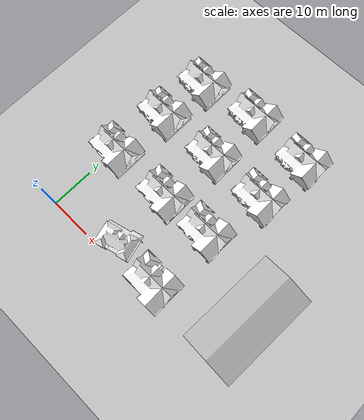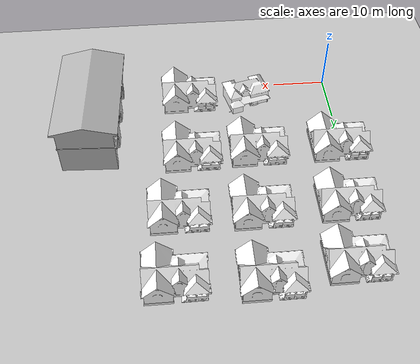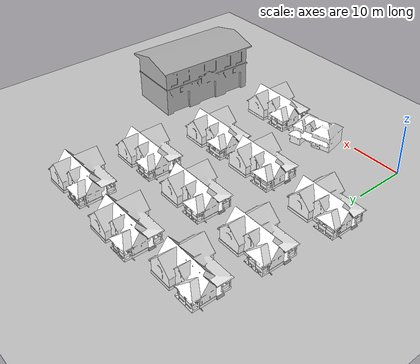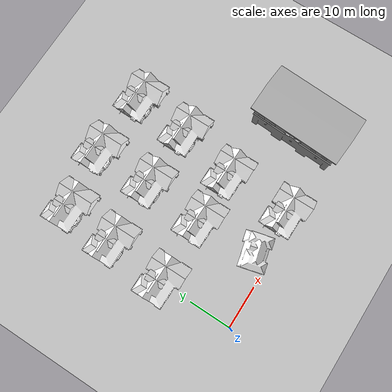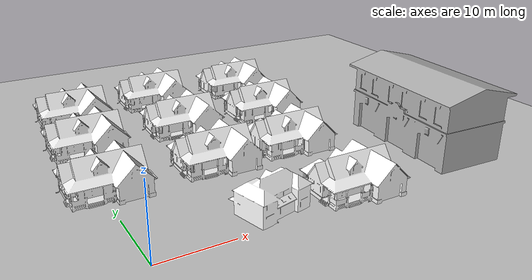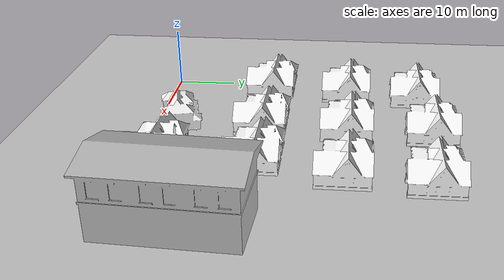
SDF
<sdf version="1.6">
 <world name="default">
  <light name="sun" type="directional">
   <pose>0 0 10 0 -0 0</pose>
   <diffuse>0.8 0.8 0.8 1</diffuse>
   <specular>0.1 0.1 0.1 1</specular>
   <attenuation>
    <range>1000</range>
    <constant>0.9</constant>
    <linear>0.01</linear>
    <quadratic>0.001</quadratic>
   </attenuation>
   <direction>-0.5 0.5 -1</direction>
  </light>
  <model name="ground_plane">
   <static>1</static>
   <link name="link">
    <collision name="collision">
     <geometry><plane><normal>0 0 1</normal><size>100 100</size></plane></geometry>
     <surface><friction><ode><mu>100</mu><mu2>50</mu2></ode></friction></surface>
    </collision>
    <visual name="visual">
     <cast_shadows>0</cast_shadows>
     <geometry><plane><normal>0 0 1</normal><size>100 100</size></plane></geometry>
     <material>
      <script><uri>file://media/materials/scripts/gazebo.material</uri><name>Gazebo/Grey</name></script>
     </material>
    </visual>
   </link>
  </model>
  <gravity>0 0 -9.8</gravity>
  <magnetic_field>6e-06 2.3e-05 -4.2e-05</magnetic_field>
  <atmosphere type="adiabatic"/>
  <physics name="default_physics" default="0" type="ode">
   <max_step_size>0.001</max_step_size>
   <real_time_factor>1</real_time_factor>
   <real_time_update_rate>1000</real_time_update_rate>
  </physics>
  <scene><ambient>0.4 0.4 0.4 1</ambient><background>0.7 0.7 0.7 1</background><shadows>1</shadows></scene>
  <spherical_coordinates>
   <surface_model>EARTH_WGS84</surface_model>
   <latitude_deg>0</latitude_deg>
   <longitude_deg>0</longitude_deg>
   <elevation>0</elevation>
   <heading_deg>0</heading_deg>
  </spherical_coordinates>
  <model name="House 1_0">
   <static>1</static>
   <link name="link">
    <collision name="collision">
     <geometry><mesh><uri>model://house_1/meshes/house_1.dae</uri><scale>1 1 1</scale></mesh></geometry>
    </collision>
    <visual name="visual">
     <geometry><mesh><uri>model://house_1/meshes/house_1.dae</uri><scale>1 1 1</scale></mesh></geometry>
     <material>
      <script>
       <uri>model://house_1/materials/scripts</uri>
       <uri>model://house_1/materials/textures</uri>
       <name>House_1/Diffuse</name>
      </script>
      <shader type="normal_map_object_space"><normal_map>House_1_Normal.png</normal_map></shader>
     </material>
    </visual>
   </link>
   <pose>16.1016 17.8883 0 0 -0 0</pose>
  </model>
  <model name="House 2_clone">
   <static>1</static>
   <link name="link">
    <collision name="collision">
     <geometry><mesh><uri>model://house_2/meshes/house_2.dae</uri><scale>1 1 1</scale></mesh></geometry>
    </collision>
    <visual name="visual">
     <geometry><mesh><uri>model://house_2/meshes/house_2.dae</uri><scale>1 1 1</scale></mesh></geometry>
     <material>
      <script>
       <uri>model://house_2/materials/scripts</uri>
       <uri>model://house_2/materials/textures</uri>
       <name>House_2/Diffuse</name>
      </script>
     </material>
    </visual>
   </link>
   <pose>15.8647 3.32475 0 0 -0 0.242859</pose>
  </model>
  <model name="House 1_0_clone">
   <static>1</static>
   <link name="link">
    <collision name="collision">
     <geometry><mesh><uri>model://house_1/meshes/house_1.dae</uri><scale>1 1 1</scale></mesh></geometry>
    </collision>
    <visual name="visual">
     <geometry><mesh><uri>model://house_1/meshes/house_1.dae</uri><scale>1 1 1</scale></mesh></geometry>
     <material>
      <script>
       <uri>model://house_1/materials/scripts</uri>
       <uri>model://house_1/materials/textures</uri>
       <name>House_1/Diffuse</name>
      </script>
      <shader type="normal_map_object_space"><normal_map>House_1_Normal.png</normal_map></shader>
     </material>
    </visual>
   </link>
   <pose>28.3571 18.1339 0 0 -0 0</pose>
  </model>
  <model name="House 1_0_clone_clone">
   <static>1</static>
   <link name="link">
    <collision name="collision">
     <geometry><mesh><uri>model://house_1/meshes/house_1.dae</uri><scale>1 1 1</scale></mesh></geometry>
    </collision>
    <visual name="visual">
     <geometry><mesh><uri>model://house_1/meshes/house_1.dae</uri><scale>1 1 1</scale></mesh></geometry>
     <material>
      <script>
       <uri>model://house_1/materials/scripts</uri>
       <uri>model://house_1/materials/textures</uri>
       <name>House_1/Diffuse</name>
      </script>
      <shader type="normal_map_object_space"><normal_map>House_1_Normal.png</normal_map></shader>
     </material>
    </visual>
   </link>
   <pose>27.9378 2.77676 0 0 -0 0</pose>
  </model>
  <model name="fire_station">
   <static>1</static>
   <link name="link">
    <collision name="main">
     <pose>0 -0.135 5 0 -0 0</pose>
     <geometry><box><size>19.98 9.68 10</size></box></geometry>
    </collision>
    <collision name="front_top">
     <pose>0 4.957 7 0 -0 0</pose>
     <geometry><box><size>20 0.515 6</size></box></geometry>
    </collision>
    <collision name="column_0">
     <pose>9.333 4.957 2 0 -0 0</pose>
     <geometry><box><size>1.315 0.515 4</size></box></geometry>
    </collision>
    <collision name="column_1">
     <pose>3.33 4.957 2 0 -0 0</pose>
     <geometry><box><size>2.63 0.515 4</size></box></geometry>
    </collision>
    <collision name="column_2">
     <pose>-3.33 4.957 2 0 -0 0</pose>
     <geometry><box><size>2.63 0.515 4</size></box></geometry>
    </collision>
    <collision name="column_3">
     <pose>-9.333 4.957 2 0 -0 0</pose>
     <geometry><box><size>1.315 0.515 4</size></box></geometry>
    </collision>
    <collision name="roof_back">
     <pose>0 -2.742 10.467 0.25 -0 0</pose>
     <geometry><box><size>21.47 6.12 0.28</size></box></geometry>
    </collision>
    <collision name="roof_front">
     <pose>0 3.12 10.467 -0.25 0 0</pose>
     <geometry><box><size>21.47 6.12 0.28</size></box></geometry>
    </collision>
    <collision name="roof_base">
     <pose>0 0.188 9.705 0 -0 0</pose>
     <geometry><box><size>21.47 11.86 0.28</size></box></geometry>
    </collision>
    <collision name="roof_filling_0">
     <pose>0 0.188 9.985 0 -0 0</pose>
     <geometry><box><size>21.47 9.53 0.28</size></box></geometry>
    </collision>
    <collision name="roof_filling_1">
     <pose>0 0.188 10.14 0 -0 0</pose>
     <geometry><box><size>21.47 8.41 0.28</size></box></geometry>
    </collision>
    <collision name="roof_filling_2">
     <pose>0 0.188 10.42 0 -0 0</pose>
     <geometry><box><size>21.47 6.25 0.28</size></box></geometry>
    </collision>
    <collision name="roof_filling_3">
     <pose>0 0.188 10.7 0 -0 0</pose>
     <geometry><box><size>21.47 4.05 0.28</size></box></geometry>
    </collision>
    <collision name="roof_filling_4">
     <pose>0 0.188 10.98 0 -0 0</pose>
     <geometry><box><size>21.47 1.83 0.28</size></box></geometry>
    </collision>
    <visual name="visual">
     <geometry><mesh><uri>model://fire_station/meshes/fire_station.dae</uri><scale>1 1 1</scale></mesh></geometry>
    </visual>
   </link>
   <pose>46.5724 9.98721 0 0 -0 1.52195</pose>
  </model>
  <model name="House 1_0_clone_0">
   <static>1</static>
   <link name="link">
    <collision name="collision">
     <geometry><mesh><uri>model://house_1/meshes/house_1.dae</uri><scale>1 1 1</scale></mesh></geometry>
    </collision>
    <visual name="visual">
     <geometry><mesh><uri>model://house_1/meshes/house_1.dae</uri><scale>1 1 1</scale></mesh></geometry>
     <material>
      <script>
       <uri>model://house_1/materials/scripts</uri>
       <uri>model://house_1/materials/textures</uri>
       <name>House_1/Diffuse</name>
      </script>
      <shader type="normal_map_object_space"><normal_map>House_1_Normal.png</normal_map></shader>
     </material>
    </visual>
   </link>
   <pose>0.817373 17.916 0 0 -0 0</pose>
  </model>
  <model name="House 1_0_clone_1">
   <static>1</static>
   <link name="link">
    <collision name="collision">
     <geometry><mesh><uri>model://house_1/meshes/house_1.dae</uri><scale>1 1 1</scale></mesh></geometry>
    </collision>
    <visual name="visual">
     <geometry><mesh><uri>model://house_1/meshes/house_1.dae</uri><scale>1 1 1</scale></mesh></geometry>
     <material>
      <script>
       <uri>model://house_1/materials/scripts</uri>
       <uri>model://house_1/materials/textures</uri>
       <name>House_1/Diffuse</name>
      </script>
      <shader type="normal_map_object_space"><normal_map>House_1_Normal.png</normal_map></shader>
     </material>
    </visual>
   </link>
   <pose>17.2233 31.9512 0 0 -0 0</pose>
  </model>
  <model name="House 1_0_clone_1_clone">
   <static>1</static>
   <link name="link">
    <collision name="collision">
     <geometry><mesh><uri>model://house_1/meshes/house_1.dae</uri><scale>1 1 1</scale></mesh></geometry>
    </collision>
    <visual name="visual">
     <geometry><mesh><uri>model://house_1/meshes/house_1.dae</uri><scale>1 1 1</scale></mesh></geometry>
     <material>
      <script>
       <uri>model://house_1/materials/scripts</uri>
       <uri>model://house_1/materials/textures</uri>
       <name>House_1/Diffuse</name>
      </script>
      <shader type="normal_map_object_space"><normal_map>House_1_Normal.png</normal_map></shader>
     </material>
    </visual>
   </link>
   <pose>17.5339 45.5478 0 0 -0 0</pose>
  </model>
  <model name="House 1_0_clone_1_clone_0">
   <static>1</static>
   <link name="link">
    <collision name="collision">
     <geometry><mesh><uri>model://house_1/meshes/house_1.dae</uri><scale>1 1 1</scale></mesh></geometry>
    </collision>
    <visual name="visual">
     <geometry><mesh><uri>model://house_1/meshes/house_1.dae</uri><scale>1 1 1</scale></mesh></geometry>
     <material>
      <script>
       <uri>model://house_1/materials/scripts</uri>
       <uri>model://house_1/materials/textures</uri>
       <name>House_1/Diffuse</name>
      </script>
      <shader type="normal_map_object_space"><normal_map>House_1_Normal.png</normal_map></shader>
     </material>
    </visual>
   </link>
   <pose>31.46 31.6882 0 0 -0 0</pose>
  </model>
  <model name="House 1_0_clone_1_clone_1">
   <static>1</static>
   <link name="link">
    <collision name="collision">
     <geometry><mesh><uri>model://house_1/meshes/house_1.dae</uri><scale>1 1 1</scale></mesh></geometry>
    </collision>
    <visual name="visual">
     <geometry><mesh><uri>model://house_1/meshes/house_1.dae</uri><scale>1 1 1</scale></mesh></geometry>
     <material>
      <script>
       <uri>model://house_1/materials/scripts</uri>
       <uri>model://house_1/materials/textures</uri>
       <name>House_1/Diffuse</name>
      </script>
      <shader type="normal_map_object_space"><normal_map>House_1_Normal.png</normal_map></shader>
     </material>
    </visual>
   </link>
   <pose>32.7255 44.6634 0 0 -0 0</pose>
  </model>
  <model name="House 1_0_clone_1_clone_2">
   <static>1</static>
   <link name="link">
    <collision name="collision">
     <geometry><mesh><uri>model://house_1/meshes/house_1.dae</uri><scale>1 1 1</scale></mesh></geometry>
    </collision>
    <visual name="visual">
     <geometry><mesh><uri>model://house_1/meshes/house_1.dae</uri><scale>1 1 1</scale></mesh></geometry>
     <material>
      <script>
       <uri>model://house_1/materials/scripts</uri>
       <uri>model://house_1/materials/textures</uri>
       <name>House_1/Diffuse</name>
      </script>
      <shader type="normal_map_object_space"><normal_map>House_1_Normal.png</normal_map></shader>
     </material>
    </visual>
   </link>
   <pose>2.12398 31.5997 0 0 -0 0</pose>
  </model>
  <model name="House 1_0_clone_1_clone_3">
   <static>1</static>
   <link name="link">
    <collision name="collision">
     <geometry><mesh><uri>model://house_1/meshes/house_1.dae</uri><scale>1 1 1</scale></mesh></geometry>
    </collision>
    <visual name="visual">
     <geometry><mesh><uri>model://house_1/meshes/house_1.dae</uri><scale>1 1 1</scale></mesh></geometry>
     <material>
      <script>
       <uri>model://house_1/materials/scripts</uri>
       <uri>model://house_1/materials/textures</uri>
       <name>House_1/Diffuse</name>
      </script>
      <shader type="normal_map_object_space"><normal_map>House_1_Normal.png</normal_map></shader>
     </material>
    </visual>
   </link>
   <pose>3.31947 43.6126 0 0 -0 0</pose>
  </model>
 </world>
</sdf>
